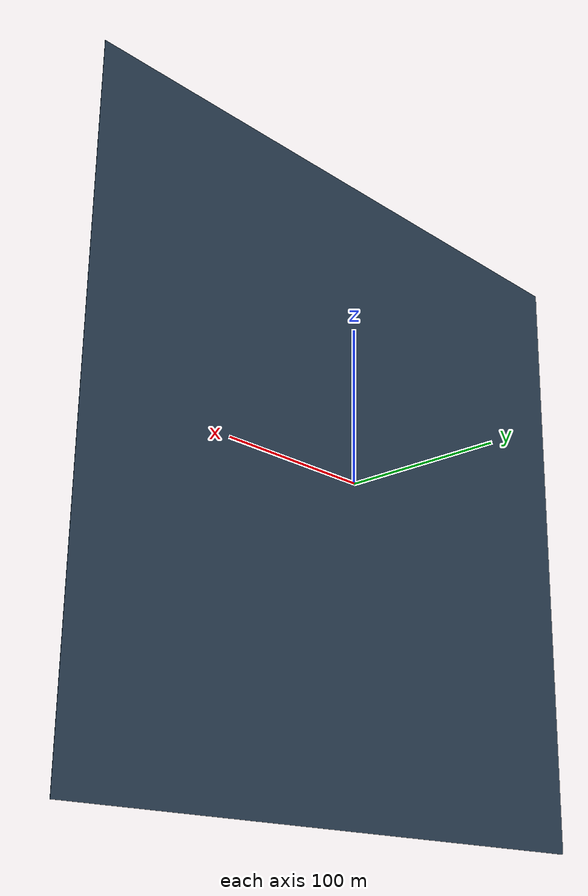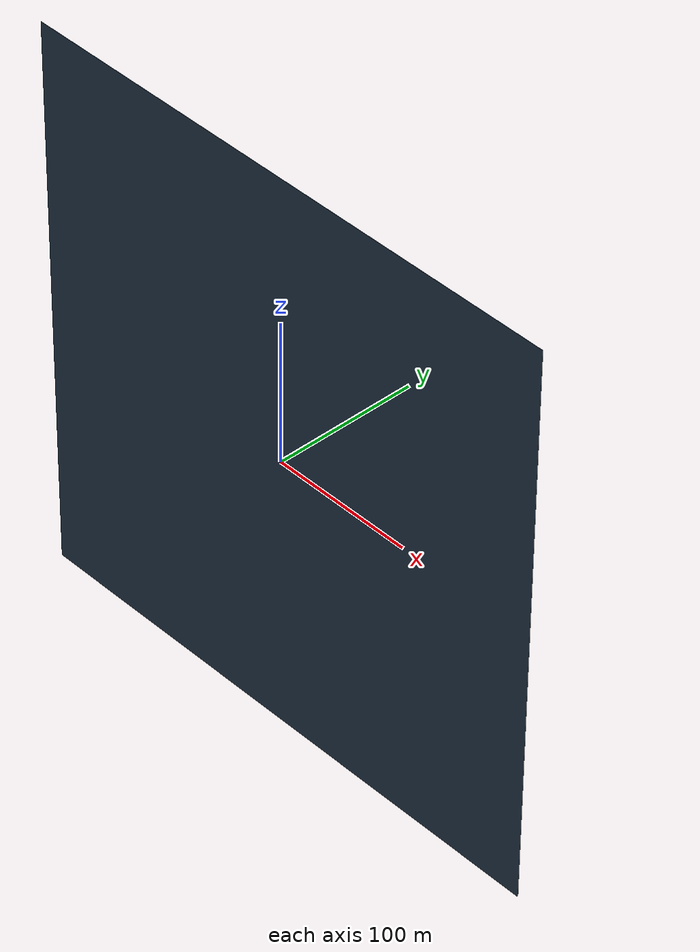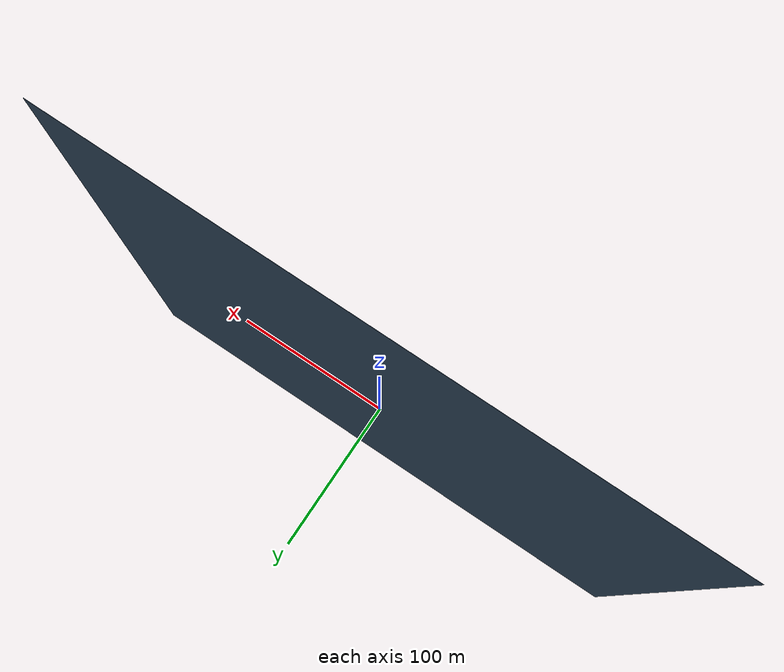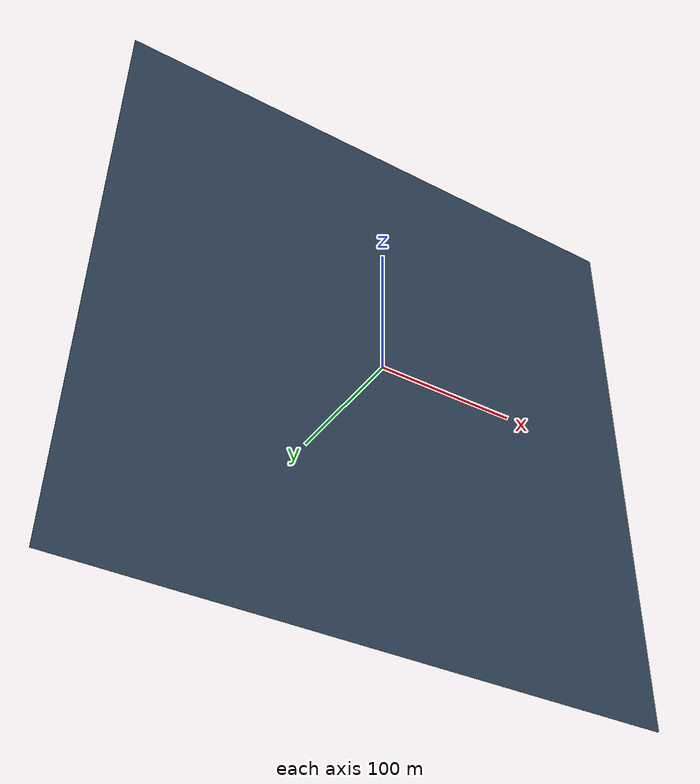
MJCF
<?xml version="1.0" encoding="utf-8"?>
<mujoco model='stdhuman'>
    <compiler coordinate='global' angle='degree'/>
    <option timestep='0.01' gravity='0 -9.8 0' collision="predefined" integrator="Euler">
    </option>
    <size nstack="1000000"/>
    <asset>
        <material name="self" rgba=".7 .5 .3 1"/>
        <texture name="texplane" type="2d" builtin="checker" rgb1=".2 .3 .4" rgb2=".1 0.15 0.2" width="512" height="512"/>
        <material name='MatPlane' reflectance='0.0' texture="texplane" texrepeat="1 1" texuniform="true"/>
    </asset>
    <default>
        <joint limited='false' damping='1' armature='0'/>
        <geom material="self" condim="3" friction="0.8" />
        <motor ctrllimited='true'/>
        <site size='0.01'/>
    </default>
    <visual>
        <scale forcewidth='0.2'/>
    </visual>
    <contact>
        <exclude body1='rClavicle' body2='lClavicle'/>
        <exclude body1='head' body2='rClavicle'/>
        <exclude body1='head' body2='lClavicle'/>
        <exclude body1='torso' body2='rUpperArm'/>
        <exclude body1='torso' body2='lUpperArm'/>
        <pair geom1='Collision_lFoot0' geom2='floor'/>
        <pair geom1='Collision_lFoot1' geom2='floor'/>
        <pair geom1='Collision_rFoot0' geom2='floor'/>
        <pair geom1='Collision_rFoot1' geom2='floor'/>
        <pair geom1='Collision_lFoot2' geom2='floor'/>
        <pair geom1='Collision_lFoot3' geom2='floor'/>
        <pair geom1='Collision_rFoot2' geom2='floor'/>
        <pair geom1='Collision_rFoot3' geom2='floor'/>
        <pair geom1='Collision_lToes' geom2='floor'/>
        <pair geom1='Collision_rToes' geom2='floor'/>
    </contact>
    <actuator>
        <motor name='pelvis_lowerback_x' joint='pelvis_lowerback_x' gear='260' ctrlrange='-50 50'/>
        <motor name='pelvis_lowerback_y' joint='pelvis_lowerback_y' gear='200' ctrlrange='-50 50'/>
        <motor name='pelvis_lowerback_z' joint='pelvis_lowerback_z' gear='200' ctrlrange='-50 50'/>
        <motor name='lowerback_torso_x' joint='lowerback_torso_x' gear='200' ctrlrange='-50 50'/>
        <motor name='lowerback_torso_y' joint='lowerback_torso_y' gear='200' ctrlrange='-100 100'/>
        <motor name='lowerback_torso_z' joint='lowerback_torso_z' gear='200' ctrlrange='-100 100'/>
        <motor name='torso_head_x' joint='torso_head_x' gear='30'  ctrlrange='-10 10'/>
        <motor name='torso_head_y' joint='torso_head_y' gear='30' ctrlrange='-10 10'/>
        <motor name='torso_head_z' joint='torso_head_z' gear='30' ctrlrange='-10 10'/>
        <motor name='rTorso_Clavicle_z' joint='rTorso_Clavicle_z' gear='110' ctrlrange='-50 50'/>
        <motor name='rTorso_Clavicle_x' joint='rTorso_Clavicle_x' gear='110' ctrlrange='-50 50'/>
        <motor name='rTorso_Clavicle_y' joint='rTorso_Clavicle_y' gear='110' ctrlrange='-50 50'/>
        <motor name='rShoulder_z' joint='rShoulder_z' gear='110' ctrlrange='-50 50'/>
        <motor name='rShoulder_x' joint='rShoulder_x' gear='110' ctrlrange='-50 50'/>
        <motor name='rShoulder_y' joint='rShoulder_y' gear='110'  ctrlrange='-50 50'/>
        <motor name='rElbow' joint='rElbow' gear='100' ctrlrange='-150 150'/>
        <motor name='lTorso_Clavicle_z' joint='lTorso_Clavicle_z' gear='110' ctrlrange='-50 50'/>
        <motor name='lTorso_Clavicle_x' joint='lTorso_Clavicle_x' gear='110' ctrlrange='-50 50'/>
        <motor name='lTorso_Clavicle_y' joint='lTorso_Clavicle_y' gear='110' ctrlrange='-50 50'/>
        <motor name='lShoulder_z' joint='lShoulder_z' gear='110' ctrlrange='-50 50'/>
        <motor name='lShoulder_x' joint='lShoulder_x' gear='110' ctrlrange='-50 50'/>
        <motor name='lShoulder_y' joint='lShoulder_y' gear='110'  ctrlrange='-50 50'/>
        <motor name='lElbow' joint='lElbow' gear='100' ctrlrange='-75 75'/>
        <motor name='rHip_x' joint='rHip_x' gear='280'  ctrlrange='-100 100'/>
        <motor name='rHip_y' joint='rHip_y' gear='280'  ctrlrange='-100 100'/>
        <motor name='rHip_z' joint='rHip_z' gear='280'  ctrlrange='-100 100'/>
        <motor name='rKnee' joint='rKnee' gear='200'  ctrlrange='-100 100'/>
        <motor name='rAnkle_x' joint='rAnkle_x' gear='30' ctrlrange='-50 50'/>
        <motor name='rAnkle_z' joint='rAnkle_z' gear='60' ctrlrange='-50 50'/>
        <motor name='rAnkle_y' joint='rAnkle_y' gear='30' ctrlrange='-50 50'/>
        <motor name='lHip_x' joint='lHip_x' gear='280'  ctrlrange='-100 100'/>
        <motor name='lHip_y' joint='lHip_y' gear='280' ctrlrange='-100 100'/>
        <motor name='lHip_z' joint='lHip_z' gear='280'  ctrlrange='-100 100'/>
        <motor name='lKnee' joint='lKnee' gear='200'  ctrlrange='-100 100'/>
        <motor name='lAnkle_x' joint='lAnkle_x' gear='30'  ctrlrange='-50 50'/>
        <motor name='lAnkle_z' joint='lAnkle_z' gear='60' ctrlrange='-50 50'/>
        <motor name='lAnkle_y' joint='lAnkle_y' gear='30' ctrlrange='-50 50'/>
    </actuator>
    <sensor>
        <touch name='sensor_head' site='EndSite_head'/>
        <touch name='sensor_rHand' site='EndSite_rHand'/>
        <touch name='sensor_lHand' site='EndSite_lHand'/>
        <touch name='sensor_rToe' site='EndSite_rToe'/>
        <touch name='sensor_lToe' site='EndSite_lToe'/>
    </sensor>
    <worldbody>
        <geom name='floor' pos='0 0 0' size='200 200 1' zaxis='0 1 0' type='plane' material="MatPlane" condim='3'/>
        <light mode='targetbodycom' target='pelvis' directional='true'
            diffuse='0.8 0.8 0.8' specular='0.1 0.1 0.1' pos='0 4.0 0.0' dir='0 -1 0' castshadow="false"/>
        <camera name='FixedCamera' pos='-0.8 3 4' fovy='45' mode='fixed' zaxis='-0.5 1.5 2.0'/>
        <camera name='TargetCamera' pos='-0.8 3 4' fovy='45' mode='trackcom' target='pelvis' zaxis='-0.5 1.5 2.0'/>
        <body name='pelvis' pos='0 0.931 0'>
            <freejoint name="RootJoint" />
            <inertial pos='0 0.931 0' mass="4.032" diaginertia='0.0119 0.0349 0.0297'/>
            <geom name='Collision_pelvis0' type='sphere' pos='0.085 0.9 0' size='0.06'/>
            <geom name='Collision_pelvis1' type='sphere' pos='0 0.95 0' size='0.09'/>
            <geom name='Collision_pelvis2' type='sphere' pos='-0.085 0.9 0' size='0.06'/>
            <body name='lowerBack' pos='0 1.08 0'>
                <joint name='pelvis_lowerback_x' type='hinge' axis='1 0 0' range='-120 120' pos='0 1.025 0' damping='5' armature='0.02' />
                <joint name='pelvis_lowerback_y'  type='hinge' axis='0 1 0' range='-80 80' pos='0 1.025 0' damping='5' armature='0.02' />
                <joint name='pelvis_lowerback_z'  type='hinge' axis='0 0 1' range='-80 80' pos='0 1.025 0' damping='5' armature='0.02' />
                <inertial pos='0 1.08 0' mass='5.508' diaginertia='0.0198  0.0545 0.0479'></inertial>
                <geom name='Collision_lowerBack' type='sphere' pos='0 1.08 0' size='0.07'/>
                <body name='torso' pos='0 1.2 0'>
                    <joint name='lowerback_torso_x'  type='hinge' axis='1 0 0' range='-80 80' pos='0.0 1.125 0.0' damping='5' armature='0.02'/>
                    <joint name='lowerback_torso_y'  type='hinge' axis='0 1 0' range='-80 80' pos='0.0 1.125 0.0' damping='5' armature='0.02'/>
                    <joint name='lowerback_torso_z'  type='hinge' axis='0 0 1' range='-80 80' pos='0.0 1.125 0.0' damping='5' armature='0.02'/>
                    <inertial pos='0 1.2 0' mass='6.426' diaginertia='0.0259 0.0636 0.0586'></inertial>
                    <geom name='Collision_torso' type='sphere' pos='0 1.2 0' size='0.1'/>
                    <body name='head' pos='0.0 1.48 0.0'>
                        <joint name='torso_head_x'  type='hinge' axis='1 0 0' range='-80 80' pos='0 1.38 0' />
                        <joint name='torso_head_y'  type='hinge' axis='0 1 0' range='-80 80' pos='0 1.38 0' />
                        <joint name='torso_head_z'  type='hinge' axis='0 0 1' range='-80 80' pos='0 1.38 0' />
                        <geom name='Collision_head' type='capsule' fromto='0.0 1.44 0.0 0.0 1.52 0.0' size='0.09'/>
                        <site name='EndSite_head' pos='0.0 1.6 0.0'/>
                    </body>
                    <body name='rClavicle' pos='-0.07 1.2825 0.0'>
                        <joint name='rTorso_Clavicle_z'  type='hinge' axis='0 0 1' range='-45 45' pos='-0.001 1.2825 0.0' armature='0.0068'/>
                        <joint name='rTorso_Clavicle_x'  type='hinge' axis='1 0 0' range='-45 45' pos='-0.001 1.2825 0.0' armature='0.0068'/>
                        <joint name='rTorso_Clavicle_y'  type='hinge' axis='0 1 0' range='-45 45' pos='-0.001 1.2825 0.0' armature='0.0068'/>
                        <geom name='Collision_rClavicle' type='capsule' fromto='-0.055 1.2825 0.0 -0.085 1.2825 0.0' size='0.065'/>
                        <body name='rUpperArm' pos='-0.241 1.2825 0.0'>
                            <joint name='rShoulder_z'  type='hinge' axis='0 0 1' range='-170 170' pos='-0.1186 1.2825 0.0' armature='0.0051'/>
                            <joint name='rShoulder_x'  type='hinge' axis='1 0 0' range='-80 80' pos='-0.1186 1.2825 0.0' armature='0.0051'/>
                            <joint name='rShoulder_y'  type='hinge' axis='0 1 0' range='-170 170' pos='-0.1186 1.2825 0.0' armature='0.0051'/>
                            <geom name='Collision_rUpperArm' type='capsule' fromto='-0.166 1.2825 0.0 -0.316 1.2825 0.0' size='0.0475'/>
                            <body name='rLowerArm' pos='-0.4786 1.2825 0.0'>
                                <joint name='rElbow'  type='hinge' axis='0 1 0' range='0 150' pos='-0.3636 1.2825 0.0' armature='0.0028'/>
                                <geom name='Collision_rLowerArm' type='capsule' fromto='-0.5486 1.2825 0.0 -0.4086 1.2825 0.0' size='0.045'/>
                                <geom name='Collision_rHand' pos='-0.63 1.2825 0.0' size='0.04' type='sphere'/>
                                <site name='EndSite_rHand' pos='-0.67 1.28 0.0'/>
                            </body>
                        </body>
                    </body>
                    <body name='lClavicle' pos='0.07 1.2825 0.0'>
                        <joint name='lTorso_Clavicle_z'  type='hinge' axis='0 0 1' range='-45 45' pos='0.001 1.2825 0.0' armature='0.0068'/>
                        <joint name='lTorso_Clavicle_x'  type='hinge' axis='1 0 0' range='-45 45' pos='0.001 1.2825 0.0' armature='0.0068'/>
                        <joint name='lTorso_Clavicle_y'  type='hinge' axis='0 1 0' range='-45 45' pos='0.001 1.2825 0.0' armature='0.0068'/>
                        <geom name='Collision_lClavicle' type='capsule' fromto='0.055 1.2825 0.0 0.085 1.2825 0.0' size='0.065'/>
                        <body name='lUpperArm' pos='0.241 1.2825 0.0'>
                            <joint name='lShoulder_z'  type='hinge' axis='0 0 1' range='-170 170' pos='0.1186 1.2825 0.0' armature='0.0051'/>
                            <joint name='lShoulder_x'  type='hinge' axis='1 0 0' range='-80 170' pos='0.1186 1.2825 0.0' armature='0.0051'/>
                            <joint name='lShoulder_y'  type='hinge' axis='0 1 0' range='-170 170' pos='0.1186 1.2825 0.0' armature='0.0051'/>
                            <geom name='Collision_lUpperArm' type='capsule' fromto='0.166 1.2825 0.0 0.316 1.2825 0.0' size='0.0475'/>
                            <body name='lLowerArm' pos='0.4786 1.2825 0.0'>
                                <joint name='lElbow'  type='hinge' axis='0 1 0' range='-150 0' pos='0.3636 1.2825 0.0' armature='0.0028'/>
                                <geom name='Collision_lLowerArm' type='capsule' fromto='0.5486 1.2825 0.0 0.4086 1.2825 0.0' size='0.045'/>
                                <geom name='Collision_lHand' pos='0.63 1.2825 0.0' size='0.04' type='sphere'/>
                                <site name='EndSite_lHand' pos='0.67 1.28 0.0'/>
                            </body>
                        </body>
                    </body>
                </body>
            </body>
            <body name='rUpperLeg' pos='-0.1 0.675 0'>
                <joint name='rHip_x'  type='hinge' axis='1 0 0' range='-150 140' pos='-0.1 0.88 0.0' damping='5' armature='0.01'/>
                <joint name='rHip_y'  type='hinge' axis='0 1 0' range='-80 80' pos='-0.1 0.88 0.0'  damping='5' armature='0.01'/>
                <joint name='rHip_z'  type='hinge' axis='0 0 1' range='-170 80' pos='-0.1 0.88 0.0'  damping='5' armature='0.01'/>
                <geom name='Collision_rUpperLeg' type='capsule' fromto='-0.1 0.805 0 -0.1 0.545 0' size='0.07'/>
                <body name='rLowerLeg' pos='-0.1 0.275 0'>
                    <joint name='rKnee'  type='hinge' axis='1 0 0' range='0 170' pos='-0.1 0.47 0.0'  armature='0.0060' limited='false'/>
                    <geom name='Collision_rLowerLeg' type='capsule' fromto='-0.1 0.405 0 -0.1 0.145 0' size='0.06'/>
                    <body name='rFoot' pos='-0.1 0.042 0.017'>
                        <joint name='rAnkle_x'  type='hinge' axis='1 0 0' range='-70 90' pos='-0.1 0.08 0.0' armature='0.0008'/>
                        <joint name='rAnkle_z'  type='hinge' axis='0 0 1' range='-45 45' pos='-0.1 0.08 0.0' armature='0.0008'/>
                        <joint name='rAnkle_y'  type='hinge' axis='0 -1 0' range='-30 30' pos='-0.1 0.08 0.0' armature='0.0008'/>
                        <geom name='Collision_rFoot0' type='sphere' pos='-0.1 0.045 -0.0315' size='0.0364'/>
                        <geom name='Collision_rFoot1' type='sphere' pos='-0.072 0.031 0.111' size='0.021'/>
                        <geom name='Collision_rFoot2' type='sphere' pos='-0.128 0.031 0.111' size='0.021'/>
                        <geom name='Collision_rFoot3' type='capsule' fromto='-0.1 0.0504 -0.0152 -0.1 0.0396 0.094' size='0.01638'/>
                        <geom name='Collision_rToes' type='capsule' fromto='-0.07 0.03 0.165 -0.13 0.03 0.165' size='0.02'/>
                        <site name='EndSite_rToe' pos='-0.11 0.032 0.19'/>
                    </body>
                </body>
            </body>
            <body name='lUpperLeg' pos='0.1 0.675 0'>
                <joint name='lHip_x'  type='hinge' axis='1 0 0' range='-150 140' pos='0.1 0.88 0.0' damping='5' armature='0.01'/>
                <joint name='lHip_y'  type='hinge' axis='0 1 0' range='-80 80' pos='0.1 0.88 0.0' damping='5' armature='0.01'/>
                <joint name='lHip_z'  type='hinge' axis='0 0 1' range='-80 170' pos='0.1 0.88 0.0' damping='5' armature='0.01'/>
                <geom name='Collision_lUpperLeg' type='capsule' fromto='0.1 0.805 0 0.1 0.545 0' size='0.07'/>
                <body name='lLowerLeg' pos='0.1 0.275 0'>
                    <joint name='lKnee'  type='hinge' axis='1 0 0' range='0 170' pos='0.1 0.47 0.0' armature='0.0060' limited='false'/>
                    <geom name='Collision_lLowerLeg' type='capsule' fromto='0.1 0.405 0 0.1 0.145 0' size='0.06'/>
                    <body name='lFoot' pos='0.1 0.042 0.017'>
                        <joint name='lAnkle_x'  type='hinge' axis='1 0 0' range='-70 90' pos='0.1 0.08 0.0' armature='0.0008'/>
                        <joint name='lAnkle_z'  type='hinge' axis='0 0 1' range='-45 45' pos='0.1 0.08 0.0' armature='0.0008'/>
                        <joint name='lAnkle_y'  type='hinge' axis='0 -1 0' range='-30 30' pos='0.1 0.08 0.0' armature='0.0008'/>
                        <geom name='Collision_lFoot0' type='sphere' pos='0.1 0.045 -0.0315' size='0.0364'/>
                        <geom name='Collision_lFoot1' type='sphere' pos='0.072 0.031 0.111' size='0.021'/>
                        <geom name='Collision_lFoot2' type='sphere' pos='0.128 0.031 0.111' size='0.021'/>
                        <geom name='Collision_lFoot3' type='capsule' fromto='0.1 0.0504 -0.0152 0.1 0.0396 0.094' size='0.01638'/>
                        <geom name='Collision_lToes' type='capsule' fromto='0.07 0.03 0.165 0.13 0.03 0.165' size='0.02'/>
                        <site name='EndSite_lToe' pos='0.11 0.032 0.19'/>
                    </body>
                </body>
            </body>
        </body>
    </worldbody>
</mujoco>
